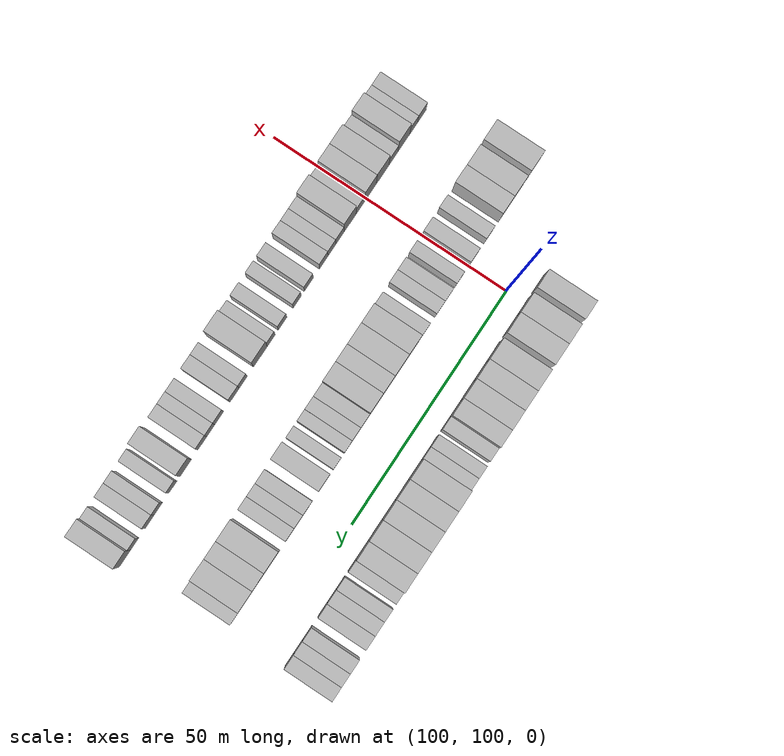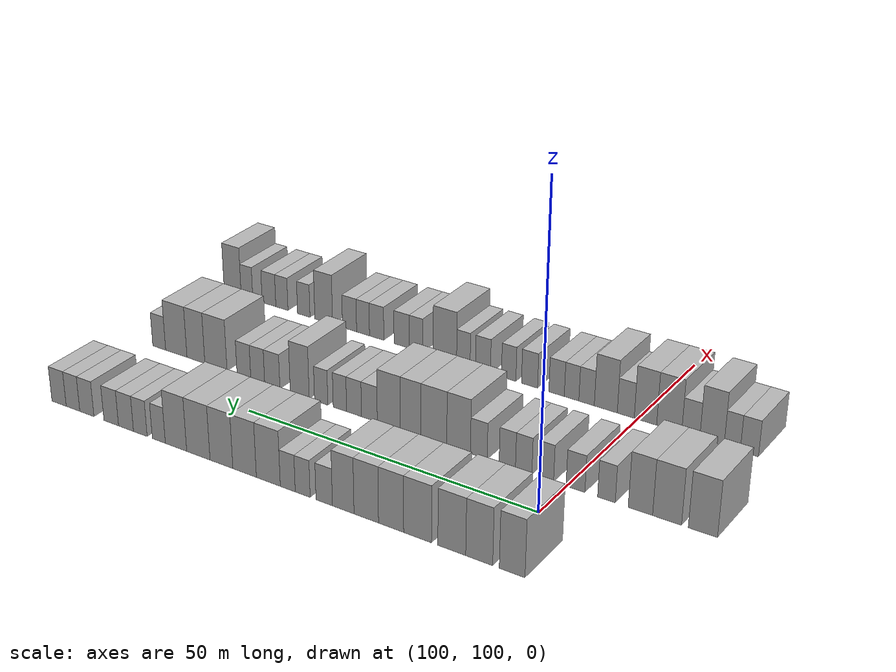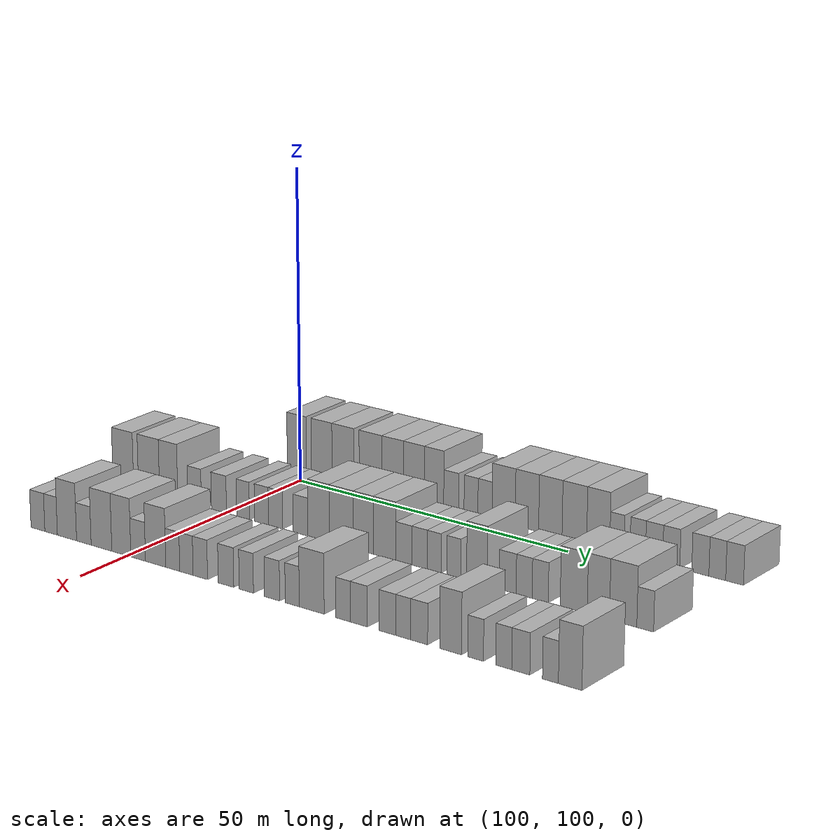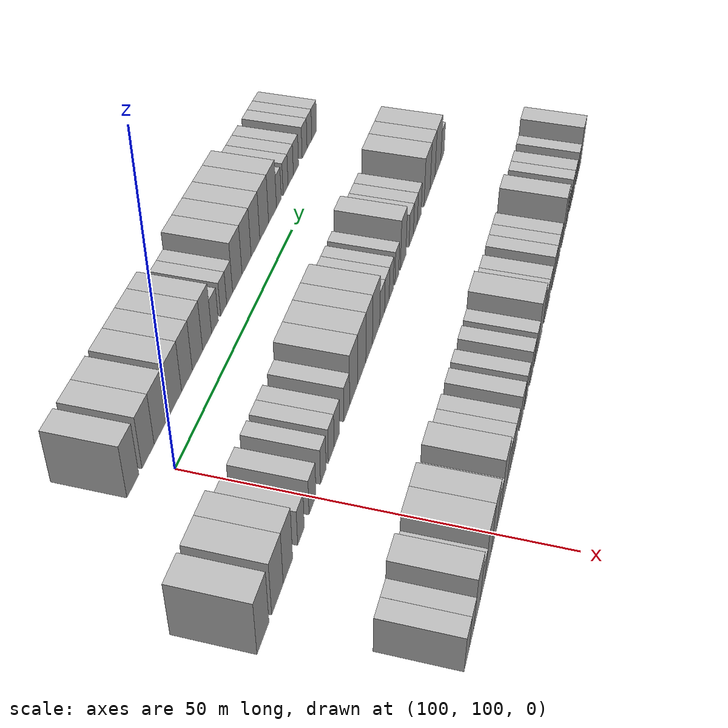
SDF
<sdf version="1.6">
 <world name="default">
  <model name="building_684">
   <static>1</static>
   <pose>91.0000 96.0054 0 0.000000 0.000000 0.000000</pose>
   <link name="link">
    <pose>0 0 4.50 0 0 0</pose>
    <collision name="collision"><geometry><box><size>10.0000 3.8603 9.0000</size></box></geometry></collision>
    <visual name="visual">
     <cast_shadows>0</cast_shadows>
     <geometry><box><size>10.0000 3.8603 9.0000</size></box></geometry>
     <material>
      <script>
       <uri>model://HANNAS_wall/materials/scripts</uri>
       <uri>model://HANNAS_wall/materials/textures</uri>
       <name>vrc/HANNAS_wall</name>
      </script>
     </material>
    </visual>
   </link>
  </model>
  <model name="building_685">
   <static>1</static>
   <pose>91.0000 101.0045 0 0.000000 0.000000 0.000000</pose>
   <link name="link">
    <pose>0 0 4.50 0 0 0</pose>
    <collision name="collision"><geometry><box><size>10.0000 4.1379 9.0000</size></box></geometry></collision>
    <visual name="visual">
     <cast_shadows>0</cast_shadows>
     <geometry><box><size>10.0000 4.1379 9.0000</size></box></geometry>
     <material>
      <script>
       <uri>model://HANNAS_wall/materials/scripts</uri>
       <uri>model://HANNAS_wall/materials/textures</uri>
       <name>vrc/HANNAS_wall</name>
      </script>
     </material>
    </visual>
   </link>
  </model>
  <model name="building_686">
   <static>1</static>
   <pose>91.0000 105.2503 0 0.000000 0.000000 0.000000</pose>
   <link name="link">
    <pose>0 0 4.50 0 0 0</pose>
    <collision name="collision"><geometry><box><size>10.0000 4.3535 9.0000</size></box></geometry></collision>
    <visual name="visual">
     <cast_shadows>0</cast_shadows>
     <geometry><box><size>10.0000 4.3535 9.0000</size></box></geometry>
     <material>
      <script>
       <uri>model://HANNAS_wall/materials/scripts</uri>
       <uri>model://HANNAS_wall/materials/textures</uri>
       <name>vrc/HANNAS_wall</name>
      </script>
     </material>
    </visual>
   </link>
  </model>
  <model name="building_687">
   <static>1</static>
   <pose>91.0000 110.6470 0 0.000000 0.000000 0.000000</pose>
   <link name="link">
    <pose>0 0 4.50 0 0 0</pose>
    <collision name="collision"><geometry><box><size>10.0000 4.4399 9.0000</size></box></geometry></collision>
    <visual name="visual">
     <cast_shadows>0</cast_shadows>
     <geometry><box><size>10.0000 4.4399 9.0000</size></box></geometry>
     <material>
      <script>
       <uri>model://HANNAS_wall/materials/scripts</uri>
       <uri>model://HANNAS_wall/materials/textures</uri>
       <name>vrc/HANNAS_wall</name>
      </script>
     </material>
    </visual>
   </link>
  </model>
  <model name="building_688">
   <static>1</static>
   <pose>91.0000 114.9137 0 0.000000 0.000000 0.000000</pose>
   <link name="link">
    <pose>0 0 4.50 0 0 0</pose>
    <collision name="collision"><geometry><box><size>10.0000 4.0936 9.0000</size></box></geometry></collision>
    <visual name="visual">
     <cast_shadows>0</cast_shadows>
     <geometry><box><size>10.0000 4.0936 9.0000</size></box></geometry>
     <material>
      <script>
       <uri>model://HANNAS_wall/materials/scripts</uri>
       <uri>model://HANNAS_wall/materials/textures</uri>
       <name>vrc/HANNAS_wall</name>
      </script>
     </material>
    </visual>
   </link>
  </model>
  <model name="building_689">
   <static>1</static>
   <pose>91.0000 118.9857 0 0.000000 0.000000 0.000000</pose>
   <link name="link">
    <pose>0 0 4.50 0 0 0</pose>
    <collision name="collision"><geometry><box><size>10.0000 4.0505 9.0000</size></box></geometry></collision>
    <visual name="visual">
     <cast_shadows>0</cast_shadows>
     <geometry><box><size>10.0000 4.0505 9.0000</size></box></geometry>
     <material>
      <script>
       <uri>model://HANNAS_wall/materials/scripts</uri>
       <uri>model://HANNAS_wall/materials/textures</uri>
       <name>vrc/HANNAS_wall</name>
      </script>
     </material>
    </visual>
   </link>
  </model>
  <model name="building_690">
   <static>1</static>
   <pose>91.0000 122.8248 0 0.000000 0.000000 0.000000</pose>
   <link name="link">
    <pose>0 0 4.50 0 0 0</pose>
    <collision name="collision"><geometry><box><size>10.0000 3.6277 9.0000</size></box></geometry></collision>
    <visual name="visual">
     <cast_shadows>0</cast_shadows>
     <geometry><box><size>10.0000 3.6277 9.0000</size></box></geometry>
     <material>
      <script>
       <uri>model://HANNAS_wall/materials/scripts</uri>
       <uri>model://HANNAS_wall/materials/textures</uri>
       <name>vrc/HANNAS_wall</name>
      </script>
     </material>
    </visual>
   </link>
  </model>
  <model name="building_691">
   <static>1</static>
   <pose>91.0000 126.0372 0 0.000000 0.000000 0.000000</pose>
   <link name="link">
    <pose>0 0 3.00 0 0 0</pose>
    <collision name="collision"><geometry><box><size>10.0000 2.7971 6.0000</size></box></geometry></collision>
    <visual name="visual">
     <cast_shadows>0</cast_shadows>
     <geometry><box><size>10.0000 2.7971 6.0000</size></box></geometry>
     <material>
      <script>
       <uri>model://HANNAS_wall/materials/scripts</uri>
       <uri>model://HANNAS_wall/materials/textures</uri>
       <name>vrc/HANNAS_wall</name>
      </script>
     </material>
    </visual>
   </link>
  </model>
  <model name="building_692">
   <static>1</static>
   <pose>91.0000 129.7230 0 0.000000 0.000000 0.000000</pose>
   <link name="link">
    <pose>0 0 3.00 0 0 0</pose>
    <collision name="collision"><geometry><box><size>10.0000 2.5743 6.0000</size></box></geometry></collision>
    <visual name="visual">
     <cast_shadows>0</cast_shadows>
     <geometry><box><size>10.0000 2.5743 6.0000</size></box></geometry>
     <material>
      <script>
       <uri>model://HANNAS_wall/materials/scripts</uri>
       <uri>model://HANNAS_wall/materials/textures</uri>
       <name>vrc/HANNAS_wall</name>
      </script>
     </material>
    </visual>
   </link>
  </model>
  <model name="building_693">
   <static>1</static>
   <pose>91.0000 132.3132 0 0.000000 0.000000 0.000000</pose>
   <link name="link">
    <pose>0 0 3.00 0 0 0</pose>
    <collision name="collision"><geometry><box><size>10.0000 2.6062 6.0000</size></box></geometry></collision>
    <visual name="visual">
     <cast_shadows>0</cast_shadows>
     <geometry><box><size>10.0000 2.6062 6.0000</size></box></geometry>
     <material>
      <script>
       <uri>model://HANNAS_wall/materials/scripts</uri>
       <uri>model://HANNAS_wall/materials/textures</uri>
       <name>vrc/HANNAS_wall</name>
      </script>
     </material>
    </visual>
   </link>
  </model>
  <model name="building_694">
   <static>1</static>
   <pose>91.0000 135.7335 0 0.000000 0.000000 0.000000</pose>
   <link name="link">
    <pose>0 0 4.50 0 0 0</pose>
    <collision name="collision"><geometry><box><size>10.0000 4.2344 9.0000</size></box></geometry></collision>
    <visual name="visual">
     <cast_shadows>0</cast_shadows>
     <geometry><box><size>10.0000 4.2344 9.0000</size></box></geometry>
     <material>
      <script>
       <uri>model://HANNAS_wall/materials/scripts</uri>
       <uri>model://HANNAS_wall/materials/textures</uri>
       <name>vrc/HANNAS_wall</name>
      </script>
     </material>
    </visual>
   </link>
  </model>
  <model name="building_695">
   <static>1</static>
   <pose>91.0000 139.9649 0 0.000000 0.000000 0.000000</pose>
   <link name="link">
    <pose>0 0 4.50 0 0 0</pose>
    <collision name="collision"><geometry><box><size>10.0000 4.2285 9.0000</size></box></geometry></collision>
    <visual name="visual">
     <cast_shadows>0</cast_shadows>
     <geometry><box><size>10.0000 4.2285 9.0000</size></box></geometry>
     <material>
      <script>
       <uri>model://HANNAS_wall/materials/scripts</uri>
       <uri>model://HANNAS_wall/materials/textures</uri>
       <name>vrc/HANNAS_wall</name>
      </script>
     </material>
    </visual>
   </link>
  </model>
  <model name="building_696">
   <static>1</static>
   <pose>91.0000 144.1677 0 0.000000 0.000000 0.000000</pose>
   <link name="link">
    <pose>0 0 4.50 0 0 0</pose>
    <collision name="collision"><geometry><box><size>10.0000 4.1770 9.0000</size></box></geometry></collision>
    <visual name="visual">
     <cast_shadows>0</cast_shadows>
     <geometry><box><size>10.0000 4.1770 9.0000</size></box></geometry>
     <material>
      <script>
       <uri>model://HANNAS_wall/materials/scripts</uri>
       <uri>model://HANNAS_wall/materials/textures</uri>
       <name>vrc/HANNAS_wall</name>
      </script>
     </material>
    </visual>
   </link>
  </model>
  <model name="building_697">
   <static>1</static>
   <pose>91.0000 148.4281 0 0.000000 0.000000 0.000000</pose>
   <link name="link">
    <pose>0 0 4.50 0 0 0</pose>
    <collision name="collision"><geometry><box><size>10.0000 4.3438 9.0000</size></box></geometry></collision>
    <visual name="visual">
     <cast_shadows>0</cast_shadows>
     <geometry><box><size>10.0000 4.3438 9.0000</size></box></geometry>
     <material>
      <script>
       <uri>model://HANNAS_wall/materials/scripts</uri>
       <uri>model://HANNAS_wall/materials/textures</uri>
       <name>vrc/HANNAS_wall</name>
      </script>
     </material>
    </visual>
   </link>
  </model>
  <model name="building_698">
   <static>1</static>
   <pose>91.0000 152.6174 0 0.000000 0.000000 0.000000</pose>
   <link name="link">
    <pose>0 0 4.50 0 0 0</pose>
    <collision name="collision"><geometry><box><size>10.0000 4.0349 9.0000</size></box></geometry></collision>
    <visual name="visual">
     <cast_shadows>0</cast_shadows>
     <geometry><box><size>10.0000 4.0349 9.0000</size></box></geometry>
     <material>
      <script>
       <uri>model://HANNAS_wall/materials/scripts</uri>
       <uri>model://HANNAS_wall/materials/textures</uri>
       <name>vrc/HANNAS_wall</name>
      </script>
     </material>
    </visual>
   </link>
  </model>
  <model name="building_699">
   <static>1</static>
   <pose>91.0000 155.8792 0 0.000000 0.000000 0.000000</pose>
   <link name="link">
    <pose>0 0 3.00 0 0 0</pose>
    <collision name="collision"><geometry><box><size>10.0000 2.4885 6.0000</size></box></geometry></collision>
    <visual name="visual">
     <cast_shadows>0</cast_shadows>
     <geometry><box><size>10.0000 2.4885 6.0000</size></box></geometry>
     <material>
      <script>
       <uri>model://HANNAS_wall/materials/scripts</uri>
       <uri>model://HANNAS_wall/materials/textures</uri>
       <name>vrc/HANNAS_wall</name>
      </script>
     </material>
    </visual>
   </link>
  </model>
  <model name="building_700">
   <static>1</static>
   <pose>91.0000 159.4492 0 0.000000 0.000000 0.000000</pose>
   <link name="link">
    <pose>0 0 3.00 0 0 0</pose>
    <collision name="collision"><geometry><box><size>10.0000 2.6516 6.0000</size></box></geometry></collision>
    <visual name="visual">
     <cast_shadows>0</cast_shadows>
     <geometry><box><size>10.0000 2.6516 6.0000</size></box></geometry>
     <material>
      <script>
       <uri>model://HANNAS_wall/materials/scripts</uri>
       <uri>model://HANNAS_wall/materials/textures</uri>
       <name>vrc/HANNAS_wall</name>
      </script>
     </material>
    </visual>
   </link>
  </model>
  <model name="building_701">
   <static>1</static>
   <pose>91.0000 162.2405 0 0.000000 0.000000 0.000000</pose>
   <link name="link">
    <pose>0 0 3.00 0 0 0</pose>
    <collision name="collision"><geometry><box><size>10.0000 2.9310 6.0000</size></box></geometry></collision>
    <visual name="visual">
     <cast_shadows>0</cast_shadows>
     <geometry><box><size>10.0000 2.9310 6.0000</size></box></geometry>
     <material>
      <script>
       <uri>model://HANNAS_wall/materials/scripts</uri>
       <uri>model://HANNAS_wall/materials/textures</uri>
       <name>vrc/HANNAS_wall</name>
      </script>
     </material>
    </visual>
   </link>
  </model>
  <model name="building_702">
   <static>1</static>
   <pose>91.0000 165.1512 0 0.000000 0.000000 0.000000</pose>
   <link name="link">
    <pose>0 0 3.00 0 0 0</pose>
    <collision name="collision"><geometry><box><size>10.0000 2.8904 6.0000</size></box></geometry></collision>
    <visual name="visual">
     <cast_shadows>0</cast_shadows>
     <geometry><box><size>10.0000 2.8904 6.0000</size></box></geometry>
     <material>
      <script>
       <uri>model://HANNAS_wall/materials/scripts</uri>
       <uri>model://HANNAS_wall/materials/textures</uri>
       <name>vrc/HANNAS_wall</name>
      </script>
     </material>
    </visual>
   </link>
  </model>
  <model name="building_703">
   <static>1</static>
   <pose>91.0000 170.0246 0 0.000000 0.000000 0.000000</pose>
   <link name="link">
    <pose>0 0 3.00 0 0 0</pose>
    <collision name="collision"><geometry><box><size>10.0000 2.8566 6.0000</size></box></geometry></collision>
    <visual name="visual">
     <cast_shadows>0</cast_shadows>
     <geometry><box><size>10.0000 2.8566 6.0000</size></box></geometry>
     <material>
      <script>
       <uri>model://HANNAS_wall/materials/scripts</uri>
       <uri>model://HANNAS_wall/materials/textures</uri>
       <name>vrc/HANNAS_wall</name>
      </script>
     </material>
    </visual>
   </link>
  </model>
  <model name="building_704">
   <static>1</static>
   <pose>91.0000 172.8418 0 0.000000 0.000000 0.000000</pose>
   <link name="link">
    <pose>0 0 3.00 0 0 0</pose>
    <collision name="collision"><geometry><box><size>10.0000 2.7778 6.0000</size></box></geometry></collision>
    <visual name="visual">
     <cast_shadows>0</cast_shadows>
     <geometry><box><size>10.0000 2.7778 6.0000</size></box></geometry>
     <material>
      <script>
       <uri>model://HANNAS_wall/materials/scripts</uri>
       <uri>model://HANNAS_wall/materials/textures</uri>
       <name>vrc/HANNAS_wall</name>
      </script>
     </material>
    </visual>
   </link>
  </model>
  <model name="building_705">
   <static>1</static>
   <pose>91.0000 175.6924 0 0.000000 0.000000 0.000000</pose>
   <link name="link">
    <pose>0 0 3.00 0 0 0</pose>
    <collision name="collision"><geometry><box><size>10.0000 2.9233 6.0000</size></box></geometry></collision>
    <visual name="visual">
     <cast_shadows>0</cast_shadows>
     <geometry><box><size>10.0000 2.9233 6.0000</size></box></geometry>
     <material>
      <script>
       <uri>model://HANNAS_wall/materials/scripts</uri>
       <uri>model://HANNAS_wall/materials/textures</uri>
       <name>vrc/HANNAS_wall</name>
      </script>
     </material>
    </visual>
   </link>
  </model>
  <model name="building_854">
   <static>1</static>
   <pose>113.0000 79.2271 0 0.000000 0.000000 0.000000</pose>
   <link name="link">
    <pose>0 0 4.50 0 0 0</pose>
    <collision name="collision"><geometry><box><size>10.0000 4.2856 9.0000</size></box></geometry></collision>
    <visual name="visual">
     <cast_shadows>0</cast_shadows>
     <geometry><box><size>10.0000 4.2856 9.0000</size></box></geometry>
     <material>
      <script>
       <uri>model://HANNAS_wall/materials/scripts</uri>
       <uri>model://HANNAS_wall/materials/textures</uri>
       <name>vrc/HANNAS_wall</name>
      </script>
     </material>
    </visual>
   </link>
  </model>
  <model name="building_855">
   <static>1</static>
   <pose>113.0000 84.5367 0 0.000000 0.000000 0.000000</pose>
   <link name="link">
    <pose>0 0 4.50 0 0 0</pose>
    <collision name="collision"><geometry><box><size>10.0000 4.3335 9.0000</size></box></geometry></collision>
    <visual name="visual">
     <cast_shadows>0</cast_shadows>
     <geometry><box><size>10.0000 4.3335 9.0000</size></box></geometry>
     <material>
      <script>
       <uri>model://HANNAS_wall/materials/scripts</uri>
       <uri>model://HANNAS_wall/materials/textures</uri>
       <name>vrc/HANNAS_wall</name>
      </script>
     </material>
    </visual>
   </link>
  </model>
  <model name="building_856">
   <static>1</static>
   <pose>113.0000 88.5578 0 0.000000 0.000000 0.000000</pose>
   <link name="link">
    <pose>0 0 4.50 0 0 0</pose>
    <collision name="collision"><geometry><box><size>10.0000 3.7089 9.0000</size></box></geometry></collision>
    <visual name="visual">
     <cast_shadows>0</cast_shadows>
     <geometry><box><size>10.0000 3.7089 9.0000</size></box></geometry>
     <material>
      <script>
       <uri>model://HANNAS_wall/materials/scripts</uri>
       <uri>model://HANNAS_wall/materials/textures</uri>
       <name>vrc/HANNAS_wall</name>
      </script>
     </material>
    </visual>
   </link>
  </model>
  <model name="building_857">
   <static>1</static>
   <pose>113.0000 93.7814 0 0.000000 0.000000 0.000000</pose>
   <link name="link">
    <pose>0 0 3.00 0 0 0</pose>
    <collision name="collision"><geometry><box><size>10.0000 2.7381 6.0000</size></box></geometry></collision>
    <visual name="visual">
     <cast_shadows>0</cast_shadows>
     <geometry><box><size>10.0000 2.7381 6.0000</size></box></geometry>
     <material>
      <script>
       <uri>model://HANNAS_wall/materials/scripts</uri>
       <uri>model://HANNAS_wall/materials/textures</uri>
       <name>vrc/HANNAS_wall</name>
      </script>
     </material>
    </visual>
   </link>
  </model>
  <model name="building_858">
   <static>1</static>
   <pose>113.0000 98.6433 0 0.000000 0.000000 0.000000</pose>
   <link name="link">
    <pose>0 0 3.00 0 0 0</pose>
    <collision name="collision"><geometry><box><size>10.0000 2.9858 6.0000</size></box></geometry></collision>
    <visual name="visual">
     <cast_shadows>0</cast_shadows>
     <geometry><box><size>10.0000 2.9858 6.0000</size></box></geometry>
     <material>
      <script>
       <uri>model://HANNAS_wall/materials/scripts</uri>
       <uri>model://HANNAS_wall/materials/textures</uri>
       <name>vrc/HANNAS_wall</name>
      </script>
     </material>
    </visual>
   </link>
  </model>
  <model name="building_859">
   <static>1</static>
   <pose>113.0000 103.3951 0 0.000000 0.000000 0.000000</pose>
   <link name="link">
    <pose>0 0 3.00 0 0 0</pose>
    <collision name="collision"><geometry><box><size>10.0000 2.5177 6.0000</size></box></geometry></collision>
    <visual name="visual">
     <cast_shadows>0</cast_shadows>
     <geometry><box><size>10.0000 2.5177 6.0000</size></box></geometry>
     <material>
      <script>
       <uri>model://HANNAS_wall/materials/scripts</uri>
       <uri>model://HANNAS_wall/materials/textures</uri>
       <name>vrc/HANNAS_wall</name>
      </script>
     </material>
    </visual>
   </link>
  </model>
  <model name="building_860">
   <static>1</static>
   <pose>113.0000 107.0019 0 0.000000 0.000000 0.000000</pose>
   <link name="link">
    <pose>0 0 3.00 0 0 0</pose>
    <collision name="collision"><geometry><box><size>10.0000 2.6960 6.0000</size></box></geometry></collision>
    <visual name="visual">
     <cast_shadows>0</cast_shadows>
     <geometry><box><size>10.0000 2.6960 6.0000</size></box></geometry>
     <material>
      <script>
       <uri>model://HANNAS_wall/materials/scripts</uri>
       <uri>model://HANNAS_wall/materials/textures</uri>
       <name>vrc/HANNAS_wall</name>
      </script>
     </material>
    </visual>
   </link>
  </model>
  <model name="building_861">
   <static>1</static>
   <pose>113.0000 109.6989 0 0.000000 0.000000 0.000000</pose>
   <link name="link">
    <pose>0 0 3.00 0 0 0</pose>
    <collision name="collision"><geometry><box><size>10.0000 2.6980 6.0000</size></box></geometry></collision>
    <visual name="visual">
     <cast_shadows>0</cast_shadows>
     <geometry><box><size>10.0000 2.6980 6.0000</size></box></geometry>
     <material>
      <script>
       <uri>model://HANNAS_wall/materials/scripts</uri>
       <uri>model://HANNAS_wall/materials/textures</uri>
       <name>vrc/HANNAS_wall</name>
      </script>
     </material>
    </visual>
   </link>
  </model>
  <model name="building_862">
   <static>1</static>
   <pose>113.0000 114.4643 0 0.000000 0.000000 0.000000</pose>
   <link name="link">
    <pose>0 0 3.00 0 0 0</pose>
    <collision name="collision"><geometry><box><size>10.0000 2.8329 6.0000</size></box></geometry></collision>
    <visual name="visual">
     <cast_shadows>0</cast_shadows>
     <geometry><box><size>10.0000 2.8329 6.0000</size></box></geometry>
     <material>
      <script>
       <uri>model://HANNAS_wall/materials/scripts</uri>
       <uri>model://HANNAS_wall/materials/textures</uri>
       <name>vrc/HANNAS_wall</name>
      </script>
     </material>
    </visual>
   </link>
  </model>
  <model name="building_863">
   <static>1</static>
   <pose>113.0000 117.9047 0 0.000000 0.000000 0.000000</pose>
   <link name="link">
    <pose>0 0 4.50 0 0 0</pose>
    <collision name="collision"><geometry><box><size>10.0000 4.0480 9.0000</size></box></geometry></collision>
    <visual name="visual">
     <cast_shadows>0</cast_shadows>
     <geometry><box><size>10.0000 4.0480 9.0000</size></box></geometry>
     <material>
      <script>
       <uri>model://HANNAS_wall/materials/scripts</uri>
       <uri>model://HANNAS_wall/materials/textures</uri>
       <name>vrc/HANNAS_wall</name>
      </script>
     </material>
    </visual>
   </link>
  </model>
  <model name="building_864">
   <static>1</static>
   <pose>113.0000 122.1634 0 0.000000 0.000000 0.000000</pose>
   <link name="link">
    <pose>0 0 4.50 0 0 0</pose>
    <collision name="collision"><geometry><box><size>10.0000 4.4696 9.0000</size></box></geometry></collision>
    <visual name="visual">
     <cast_shadows>0</cast_shadows>
     <geometry><box><size>10.0000 4.4696 9.0000</size></box></geometry>
     <material>
      <script>
       <uri>model://HANNAS_wall/materials/scripts</uri>
       <uri>model://HANNAS_wall/materials/textures</uri>
       <name>vrc/HANNAS_wall</name>
      </script>
     </material>
    </visual>
   </link>
  </model>
  <model name="building_865">
   <static>1</static>
   <pose>113.0000 126.2184 0 0.000000 0.000000 0.000000</pose>
   <link name="link">
    <pose>0 0 4.50 0 0 0</pose>
    <collision name="collision"><geometry><box><size>10.0000 3.6403 9.0000</size></box></geometry></collision>
    <visual name="visual">
     <cast_shadows>0</cast_shadows>
     <geometry><box><size>10.0000 3.6403 9.0000</size></box></geometry>
     <material>
      <script>
       <uri>model://HANNAS_wall/materials/scripts</uri>
       <uri>model://HANNAS_wall/materials/textures</uri>
       <name>vrc/HANNAS_wall</name>
      </script>
     </material>
    </visual>
   </link>
  </model>
  <model name="building_866">
   <static>1</static>
   <pose>113.0000 130.1092 0 0.000000 0.000000 0.000000</pose>
   <link name="link">
    <pose>0 0 4.50 0 0 0</pose>
    <collision name="collision"><geometry><box><size>10.0000 4.1415 9.0000</size></box></geometry></collision>
    <visual name="visual">
     <cast_shadows>0</cast_shadows>
     <geometry><box><size>10.0000 4.1415 9.0000</size></box></geometry>
     <material>
      <script>
       <uri>model://HANNAS_wall/materials/scripts</uri>
       <uri>model://HANNAS_wall/materials/textures</uri>
       <name>vrc/HANNAS_wall</name>
      </script>
     </material>
    </visual>
   </link>
  </model>
  <model name="building_867">
   <static>1</static>
   <pose>113.0000 133.6156 0 0.000000 0.000000 0.000000</pose>
   <link name="link">
    <pose>0 0 3.00 0 0 0</pose>
    <collision name="collision"><geometry><box><size>10.0000 2.8713 6.0000</size></box></geometry></collision>
    <visual name="visual">
     <cast_shadows>0</cast_shadows>
     <geometry><box><size>10.0000 2.8713 6.0000</size></box></geometry>
     <material>
      <script>
       <uri>model://HANNAS_wall/materials/scripts</uri>
       <uri>model://HANNAS_wall/materials/textures</uri>
       <name>vrc/HANNAS_wall</name>
      </script>
     </material>
    </visual>
   </link>
  </model>
  <model name="building_868">
   <static>1</static>
   <pose>113.0000 136.4163 0 0.000000 0.000000 0.000000</pose>
   <link name="link">
    <pose>0 0 3.00 0 0 0</pose>
    <collision name="collision"><geometry><box><size>10.0000 2.7302 6.0000</size></box></geometry></collision>
    <visual name="visual">
     <cast_shadows>0</cast_shadows>
     <geometry><box><size>10.0000 2.7302 6.0000</size></box></geometry>
     <material>
      <script>
       <uri>model://HANNAS_wall/materials/scripts</uri>
       <uri>model://HANNAS_wall/materials/textures</uri>
       <name>vrc/HANNAS_wall</name>
      </script>
     </material>
    </visual>
   </link>
  </model>
  <model name="building_869">
   <static>1</static>
   <pose>113.0000 139.0191 0 0.000000 0.000000 0.000000</pose>
   <link name="link">
    <pose>0 0 3.00 0 0 0</pose>
    <collision name="collision"><geometry><box><size>10.0000 2.4753 6.0000</size></box></geometry></collision>
    <visual name="visual">
     <cast_shadows>0</cast_shadows>
     <geometry><box><size>10.0000 2.4753 6.0000</size></box></geometry>
     <material>
      <script>
       <uri>model://HANNAS_wall/materials/scripts</uri>
       <uri>model://HANNAS_wall/materials/textures</uri>
       <name>vrc/HANNAS_wall</name>
      </script>
     </material>
    </visual>
   </link>
  </model>
  <model name="building_870">
   <static>1</static>
   <pose>113.0000 142.5044 0 0.000000 0.000000 0.000000</pose>
   <link name="link">
    <pose>0 0 3.00 0 0 0</pose>
    <collision name="collision"><geometry><box><size>10.0000 2.4953 6.0000</size></box></geometry></collision>
    <visual name="visual">
     <cast_shadows>0</cast_shadows>
     <geometry><box><size>10.0000 2.4953 6.0000</size></box></geometry>
     <material>
      <script>
       <uri>model://HANNAS_wall/materials/scripts</uri>
       <uri>model://HANNAS_wall/materials/textures</uri>
       <name>vrc/HANNAS_wall</name>
      </script>
     </material>
    </visual>
   </link>
  </model>
  <model name="building_871">
   <static>1</static>
   <pose>113.0000 146.5556 0 0.000000 0.000000 0.000000</pose>
   <link name="link">
    <pose>0 0 4.50 0 0 0</pose>
    <collision name="collision"><geometry><box><size>10.0000 3.6070 9.0000</size></box></geometry></collision>
    <visual name="visual">
     <cast_shadows>0</cast_shadows>
     <geometry><box><size>10.0000 3.6070 9.0000</size></box></geometry>
     <material>
      <script>
       <uri>model://HANNAS_wall/materials/scripts</uri>
       <uri>model://HANNAS_wall/materials/textures</uri>
       <name>vrc/HANNAS_wall</name>
      </script>
     </material>
    </visual>
   </link>
  </model>
  <model name="building_872">
   <static>1</static>
   <pose>113.0000 151.8375 0 0.000000 0.000000 0.000000</pose>
   <link name="link">
    <pose>0 0 3.00 0 0 0</pose>
    <collision name="collision"><geometry><box><size>10.0000 2.9568 6.0000</size></box></geometry></collision>
    <visual name="visual">
     <cast_shadows>0</cast_shadows>
     <geometry><box><size>10.0000 2.9568 6.0000</size></box></geometry>
     <material>
      <script>
       <uri>model://HANNAS_wall/materials/scripts</uri>
       <uri>model://HANNAS_wall/materials/textures</uri>
       <name>vrc/HANNAS_wall</name>
      </script>
     </material>
    </visual>
   </link>
  </model>
  <model name="building_873">
   <static>1</static>
   <pose>113.0000 154.6767 0 0.000000 0.000000 0.000000</pose>
   <link name="link">
    <pose>0 0 3.00 0 0 0</pose>
    <collision name="collision"><geometry><box><size>10.0000 2.7217 6.0000</size></box></geometry></collision>
    <visual name="visual">
     <cast_shadows>0</cast_shadows>
     <geometry><box><size>10.0000 2.7217 6.0000</size></box></geometry>
     <material>
      <script>
       <uri>model://HANNAS_wall/materials/scripts</uri>
       <uri>model://HANNAS_wall/materials/textures</uri>
       <name>vrc/HANNAS_wall</name>
      </script>
     </material>
    </visual>
   </link>
  </model>
  <model name="building_874">
   <static>1</static>
   <pose>113.0000 157.3989 0 0.000000 0.000000 0.000000</pose>
   <link name="link">
    <pose>0 0 3.00 0 0 0</pose>
    <collision name="collision"><geometry><box><size>10.0000 2.7226 6.0000</size></box></geometry></collision>
    <visual name="visual">
     <cast_shadows>0</cast_shadows>
     <geometry><box><size>10.0000 2.7226 6.0000</size></box></geometry>
     <material>
      <script>
       <uri>model://HANNAS_wall/materials/scripts</uri>
       <uri>model://HANNAS_wall/materials/textures</uri>
       <name>vrc/HANNAS_wall</name>
      </script>
     </material>
    </visual>
   </link>
  </model>
  <model name="building_875">
   <static>1</static>
   <pose>113.0000 163.0029 0 0.000000 0.000000 0.000000</pose>
   <link name="link">
    <pose>0 0 4.50 0 0 0</pose>
    <collision name="collision"><geometry><box><size>10.0000 4.4855 9.0000</size></box></geometry></collision>
    <visual name="visual">
     <cast_shadows>0</cast_shadows>
     <geometry><box><size>10.0000 4.4855 9.0000</size></box></geometry>
     <material>
      <script>
       <uri>model://HANNAS_wall/materials/scripts</uri>
       <uri>model://HANNAS_wall/materials/textures</uri>
       <name>vrc/HANNAS_wall</name>
      </script>
     </material>
    </visual>
   </link>
  </model>
  <model name="building_876">
   <static>1</static>
   <pose>113.0000 167.0771 0 0.000000 0.000000 0.000000</pose>
   <link name="link">
    <pose>0 0 4.50 0 0 0</pose>
    <collision name="collision"><geometry><box><size>10.0000 3.6629 9.0000</size></box></geometry></collision>
    <visual name="visual">
     <cast_shadows>0</cast_shadows>
     <geometry><box><size>10.0000 3.6629 9.0000</size></box></geometry>
     <material>
      <script>
       <uri>model://HANNAS_wall/materials/scripts</uri>
       <uri>model://HANNAS_wall/materials/textures</uri>
       <name>vrc/HANNAS_wall</name>
      </script>
     </material>
    </visual>
   </link>
  </model>
  <model name="building_877">
   <static>1</static>
   <pose>113.0000 171.1262 0 0.000000 0.000000 0.000000</pose>
   <link name="link">
    <pose>0 0 4.50 0 0 0</pose>
    <collision name="collision"><geometry><box><size>10.0000 4.4353 9.0000</size></box></geometry></collision>
    <visual name="visual">
     <cast_shadows>0</cast_shadows>
     <geometry><box><size>10.0000 4.4353 9.0000</size></box></geometry>
     <material>
      <script>
       <uri>model://HANNAS_wall/materials/scripts</uri>
       <uri>model://HANNAS_wall/materials/textures</uri>
       <name>vrc/HANNAS_wall</name>
      </script>
     </material>
    </visual>
   </link>
  </model>
  <model name="building_878">
   <static>1</static>
   <pose>113.0000 174.6949 0 0.000000 0.000000 0.000000</pose>
   <link name="link">
    <pose>0 0 3.00 0 0 0</pose>
    <collision name="collision"><geometry><box><size>10.0000 2.7022 6.0000</size></box></geometry></collision>
    <visual name="visual">
     <cast_shadows>0</cast_shadows>
     <geometry><box><size>10.0000 2.7022 6.0000</size></box></geometry>
     <material>
      <script>
       <uri>model://HANNAS_wall/materials/scripts</uri>
       <uri>model://HANNAS_wall/materials/textures</uri>
       <name>vrc/HANNAS_wall</name>
      </script>
     </material>
    </visual>
   </link>
  </model>
  <model name="building_1043">
   <static>1</static>
   <pose>135.0000 82.0904 0 0.000000 0.000000 0.000000</pose>
   <link name="link">
    <pose>0 0 3.00 0 0 0</pose>
    <collision name="collision"><geometry><box><size>10.0000 2.8292 6.0000</size></box></geometry></collision>
    <visual name="visual">
     <cast_shadows>0</cast_shadows>
     <geometry><box><size>10.0000 2.8292 6.0000</size></box></geometry>
     <material>
      <script>
       <uri>model://HANNAS_wall/materials/scripts</uri>
       <uri>model://HANNAS_wall/materials/textures</uri>
       <name>vrc/HANNAS_wall</name>
      </script>
     </material>
    </visual>
   </link>
  </model>
  <model name="building_1044">
   <static>1</static>
   <pose>135.0000 84.7758 0 0.000000 0.000000 0.000000</pose>
   <link name="link">
    <pose>0 0 3.00 0 0 0</pose>
    <collision name="collision"><geometry><box><size>10.0000 2.5415 6.0000</size></box></geometry></collision>
    <visual name="visual">
     <cast_shadows>0</cast_shadows>
     <geometry><box><size>10.0000 2.5415 6.0000</size></box></geometry>
     <material>
      <script>
       <uri>model://HANNAS_wall/materials/scripts</uri>
       <uri>model://HANNAS_wall/materials/textures</uri>
       <name>vrc/HANNAS_wall</name>
      </script>
     </material>
    </visual>
   </link>
  </model>
  <model name="building_1045">
   <static>1</static>
   <pose>135.0000 87.9763 0 0.000000 0.000000 0.000000</pose>
   <link name="link">
    <pose>0 0 4.50 0 0 0</pose>
    <collision name="collision"><geometry><box><size>10.0000 3.8595 9.0000</size></box></geometry></collision>
    <visual name="visual">
     <cast_shadows>0</cast_shadows>
     <geometry><box><size>10.0000 3.8595 9.0000</size></box></geometry>
     <material>
      <script>
       <uri>model://HANNAS_wall/materials/scripts</uri>
       <uri>model://HANNAS_wall/materials/textures</uri>
       <name>vrc/HANNAS_wall</name>
      </script>
     </material>
    </visual>
   </link>
  </model>
  <model name="building_1046">
   <static>1</static>
   <pose>135.0000 91.3594 0 0.000000 0.000000 0.000000</pose>
   <link name="link">
    <pose>0 0 3.00 0 0 0</pose>
    <collision name="collision"><geometry><box><size>10.0000 2.9068 6.0000</size></box></geometry></collision>
    <visual name="visual">
     <cast_shadows>0</cast_shadows>
     <geometry><box><size>10.0000 2.9068 6.0000</size></box></geometry>
     <material>
      <script>
       <uri>model://HANNAS_wall/materials/scripts</uri>
       <uri>model://HANNAS_wall/materials/textures</uri>
       <name>vrc/HANNAS_wall</name>
      </script>
     </material>
    </visual>
   </link>
  </model>
  <model name="building_1047">
   <static>1</static>
   <pose>135.0000 94.8569 0 0.000000 0.000000 0.000000</pose>
   <link name="link">
    <pose>0 0 4.50 0 0 0</pose>
    <collision name="collision"><geometry><box><size>10.0000 4.0881 9.0000</size></box></geometry></collision>
    <visual name="visual">
     <cast_shadows>0</cast_shadows>
     <geometry><box><size>10.0000 4.0881 9.0000</size></box></geometry>
     <material>
      <script>
       <uri>model://HANNAS_wall/materials/scripts</uri>
       <uri>model://HANNAS_wall/materials/textures</uri>
       <name>vrc/HANNAS_wall</name>
      </script>
     </material>
    </visual>
   </link>
  </model>
  <model name="building_1048">
   <static>1</static>
   <pose>135.0000 98.7574 0 0.000000 0.000000 0.000000</pose>
   <link name="link">
    <pose>0 0 4.50 0 0 0</pose>
    <collision name="collision"><geometry><box><size>10.0000 3.7129 9.0000</size></box></geometry></collision>
    <visual name="visual">
     <cast_shadows>0</cast_shadows>
     <geometry><box><size>10.0000 3.7129 9.0000</size></box></geometry>
     <material>
      <script>
       <uri>model://HANNAS_wall/materials/scripts</uri>
       <uri>model://HANNAS_wall/materials/textures</uri>
       <name>vrc/HANNAS_wall</name>
      </script>
     </material>
    </visual>
   </link>
  </model>
  <model name="building_1049">
   <static>1</static>
   <pose>135.0000 102.0347 0 0.000000 0.000000 0.000000</pose>
   <link name="link">
    <pose>0 0 3.00 0 0 0</pose>
    <collision name="collision"><geometry><box><size>10.0000 2.8417 6.0000</size></box></geometry></collision>
    <visual name="visual">
     <cast_shadows>0</cast_shadows>
     <geometry><box><size>10.0000 2.8417 6.0000</size></box></geometry>
     <material>
      <script>
       <uri>model://HANNAS_wall/materials/scripts</uri>
       <uri>model://HANNAS_wall/materials/textures</uri>
       <name>vrc/HANNAS_wall</name>
      </script>
     </material>
    </visual>
   </link>
  </model>
  <model name="building_1050">
   <static>1</static>
   <pose>135.0000 105.4058 0 0.000000 0.000000 0.000000</pose>
   <link name="link">
    <pose>0 0 4.50 0 0 0</pose>
    <collision name="collision"><geometry><box><size>10.0000 3.9005 9.0000</size></box></geometry></collision>
    <visual name="visual">
     <cast_shadows>0</cast_shadows>
     <geometry><box><size>10.0000 3.9005 9.0000</size></box></geometry>
     <material>
      <script>
       <uri>model://HANNAS_wall/materials/scripts</uri>
       <uri>model://HANNAS_wall/materials/textures</uri>
       <name>vrc/HANNAS_wall</name>
      </script>
     </material>
    </visual>
   </link>
  </model>
  <model name="building_1051">
   <static>1</static>
   <pose>135.0000 108.6858 0 0.000000 0.000000 0.000000</pose>
   <link name="link">
    <pose>0 0 3.00 0 0 0</pose>
    <collision name="collision"><geometry><box><size>10.0000 2.6595 6.0000</size></box></geometry></collision>
    <visual name="visual">
     <cast_shadows>0</cast_shadows>
     <geometry><box><size>10.0000 2.6595 6.0000</size></box></geometry>
     <material>
      <script>
       <uri>model://HANNAS_wall/materials/scripts</uri>
       <uri>model://HANNAS_wall/materials/textures</uri>
       <name>vrc/HANNAS_wall</name>
      </script>
     </material>
    </visual>
   </link>
  </model>
  <model name="building_1052">
   <static>1</static>
   <pose>135.0000 111.2762 0 0.000000 0.000000 0.000000</pose>
   <link name="link">
    <pose>0 0 3.00 0 0 0</pose>
    <collision name="collision"><geometry><box><size>10.0000 2.5212 6.0000</size></box></geometry></collision>
    <visual name="visual">
     <cast_shadows>0</cast_shadows>
     <geometry><box><size>10.0000 2.5212 6.0000</size></box></geometry>
     <material>
      <script>
       <uri>model://HANNAS_wall/materials/scripts</uri>
       <uri>model://HANNAS_wall/materials/textures</uri>
       <name>vrc/HANNAS_wall</name>
      </script>
     </material>
    </visual>
   </link>
  </model>
  <model name="building_1053">
   <static>1</static>
   <pose>135.0000 113.8893 0 0.000000 0.000000 0.000000</pose>
   <link name="link">
    <pose>0 0 3.00 0 0 0</pose>
    <collision name="collision"><geometry><box><size>10.0000 2.7050 6.0000</size></box></geometry></collision>
    <visual name="visual">
     <cast_shadows>0</cast_shadows>
     <geometry><box><size>10.0000 2.7050 6.0000</size></box></geometry>
     <material>
      <script>
       <uri>model://HANNAS_wall/materials/scripts</uri>
       <uri>model://HANNAS_wall/materials/textures</uri>
       <name>vrc/HANNAS_wall</name>
      </script>
     </material>
    </visual>
   </link>
  </model>
  <model name="building_1054">
   <static>1</static>
   <pose>135.0000 118.6748 0 0.000000 0.000000 0.000000</pose>
   <link name="link">
    <pose>0 0 3.00 0 0 0</pose>
    <collision name="collision"><geometry><box><size>10.0000 2.8661 6.0000</size></box></geometry></collision>
    <visual name="visual">
     <cast_shadows>0</cast_shadows>
     <geometry><box><size>10.0000 2.8661 6.0000</size></box></geometry>
     <material>
      <script>
       <uri>model://HANNAS_wall/materials/scripts</uri>
       <uri>model://HANNAS_wall/materials/textures</uri>
       <name>vrc/HANNAS_wall</name>
      </script>
     </material>
    </visual>
   </link>
  </model>
  <model name="building_1055">
   <static>1</static>
   <pose>135.0000 122.4145 0 0.000000 0.000000 0.000000</pose>
   <link name="link">
    <pose>0 0 3.00 0 0 0</pose>
    <collision name="collision"><geometry><box><size>10.0000 2.6134 6.0000</size></box></geometry></collision>
    <visual name="visual">
     <cast_shadows>0</cast_shadows>
     <geometry><box><size>10.0000 2.6134 6.0000</size></box></geometry>
     <material>
      <script>
       <uri>model://HANNAS_wall/materials/scripts</uri>
       <uri>model://HANNAS_wall/materials/textures</uri>
       <name>vrc/HANNAS_wall</name>
      </script>
     </material>
    </visual>
   </link>
  </model>
  <model name="building_1056">
   <static>1</static>
   <pose>135.0000 127.0924 0 0.000000 0.000000 0.000000</pose>
   <link name="link">
    <pose>0 0 3.00 0 0 0</pose>
    <collision name="collision"><geometry><box><size>10.0000 2.7423 6.0000</size></box></geometry></collision>
    <visual name="visual">
     <cast_shadows>0</cast_shadows>
     <geometry><box><size>10.0000 2.7423 6.0000</size></box></geometry>
     <material>
      <script>
       <uri>model://HANNAS_wall/materials/scripts</uri>
       <uri>model://HANNAS_wall/materials/textures</uri>
       <name>vrc/HANNAS_wall</name>
      </script>
     </material>
    </visual>
   </link>
  </model>
  <model name="building_1057">
   <static>1</static>
   <pose>135.0000 130.7202 0 0.000000 0.000000 0.000000</pose>
   <link name="link">
    <pose>0 0 3.00 0 0 0</pose>
    <collision name="collision"><geometry><box><size>10.0000 2.5133 6.0000</size></box></geometry></collision>
    <visual name="visual">
     <cast_shadows>0</cast_shadows>
     <geometry><box><size>10.0000 2.5133 6.0000</size></box></geometry>
     <material>
      <script>
       <uri>model://HANNAS_wall/materials/scripts</uri>
       <uri>model://HANNAS_wall/materials/textures</uri>
       <name>vrc/HANNAS_wall</name>
      </script>
     </material>
    </visual>
   </link>
  </model>
  <model name="building_1058">
   <static>1</static>
   <pose>135.0000 134.1827 0 0.000000 0.000000 0.000000</pose>
   <link name="link">
    <pose>0 0 4.50 0 0 0</pose>
    <collision name="collision"><geometry><box><size>10.0000 4.4117 9.0000</size></box></geometry></collision>
    <visual name="visual">
     <cast_shadows>0</cast_shadows>
     <geometry><box><size>10.0000 4.4117 9.0000</size></box></geometry>
     <material>
      <script>
       <uri>model://HANNAS_wall/materials/scripts</uri>
       <uri>model://HANNAS_wall/materials/textures</uri>
       <name>vrc/HANNAS_wall</name>
      </script>
     </material>
    </visual>
   </link>
  </model>
  <model name="building_1059">
   <static>1</static>
   <pose>135.0000 139.6708 0 0.000000 0.000000 0.000000</pose>
   <link name="link">
    <pose>0 0 3.00 0 0 0</pose>
    <collision name="collision"><geometry><box><size>10.0000 2.5645 6.0000</size></box></geometry></collision>
    <visual name="visual">
     <cast_shadows>0</cast_shadows>
     <geometry><box><size>10.0000 2.5645 6.0000</size></box></geometry>
     <material>
      <script>
       <uri>model://HANNAS_wall/materials/scripts</uri>
       <uri>model://HANNAS_wall/materials/textures</uri>
       <name>vrc/HANNAS_wall</name>
      </script>
     </material>
    </visual>
   </link>
  </model>
  <model name="building_1060">
   <static>1</static>
   <pose>135.0000 142.4318 0 0.000000 0.000000 0.000000</pose>
   <link name="link">
    <pose>0 0 3.00 0 0 0</pose>
    <collision name="collision"><geometry><box><size>10.0000 2.9575 6.0000</size></box></geometry></collision>
    <visual name="visual">
     <cast_shadows>0</cast_shadows>
     <geometry><box><size>10.0000 2.9575 6.0000</size></box></geometry>
     <material>
      <script>
       <uri>model://HANNAS_wall/materials/scripts</uri>
       <uri>model://HANNAS_wall/materials/textures</uri>
       <name>vrc/HANNAS_wall</name>
      </script>
     </material>
    </visual>
   </link>
  </model>
  <model name="building_1061">
   <static>1</static>
   <pose>135.0000 147.3235 0 0.000000 0.000000 0.000000</pose>
   <link name="link">
    <pose>0 0 3.00 0 0 0</pose>
    <collision name="collision"><geometry><box><size>10.0000 2.8258 6.0000</size></box></geometry></collision>
    <visual name="visual">
     <cast_shadows>0</cast_shadows>
     <geometry><box><size>10.0000 2.8258 6.0000</size></box></geometry>
     <material>
      <script>
       <uri>model://HANNAS_wall/materials/scripts</uri>
       <uri>model://HANNAS_wall/materials/textures</uri>
       <name>vrc/HANNAS_wall</name>
      </script>
     </material>
    </visual>
   </link>
  </model>
  <model name="building_1062">
   <static>1</static>
   <pose>135.0000 150.0175 0 0.000000 0.000000 0.000000</pose>
   <link name="link">
    <pose>0 0 3.00 0 0 0</pose>
    <collision name="collision"><geometry><box><size>10.0000 2.5622 6.0000</size></box></geometry></collision>
    <visual name="visual">
     <cast_shadows>0</cast_shadows>
     <geometry><box><size>10.0000 2.5622 6.0000</size></box></geometry>
     <material>
      <script>
       <uri>model://HANNAS_wall/materials/scripts</uri>
       <uri>model://HANNAS_wall/materials/textures</uri>
       <name>vrc/HANNAS_wall</name>
      </script>
     </material>
    </visual>
   </link>
  </model>
  <model name="building_1063">
   <static>1</static>
   <pose>135.0000 152.7151 0 0.000000 0.000000 0.000000</pose>
   <link name="link">
    <pose>0 0 3.00 0 0 0</pose>
    <collision name="collision"><geometry><box><size>10.0000 2.8330 6.0000</size></box></geometry></collision>
    <visual name="visual">
     <cast_shadows>0</cast_shadows>
     <geometry><box><size>10.0000 2.8330 6.0000</size></box></geometry>
     <material>
      <script>
       <uri>model://HANNAS_wall/materials/scripts</uri>
       <uri>model://HANNAS_wall/materials/textures</uri>
       <name>vrc/HANNAS_wall</name>
      </script>
     </material>
    </visual>
   </link>
  </model>
  <model name="building_1064">
   <static>1</static>
   <pose>135.0000 157.9451 0 0.000000 0.000000 0.000000</pose>
   <link name="link">
    <pose>0 0 4.50 0 0 0</pose>
    <collision name="collision"><geometry><box><size>10.0000 3.6270 9.0000</size></box></geometry></collision>
    <visual name="visual">
     <cast_shadows>0</cast_shadows>
     <geometry><box><size>10.0000 3.6270 9.0000</size></box></geometry>
     <material>
      <script>
       <uri>model://HANNAS_wall/materials/scripts</uri>
       <uri>model://HANNAS_wall/materials/textures</uri>
       <name>vrc/HANNAS_wall</name>
      </script>
     </material>
    </visual>
   </link>
  </model>
  <model name="building_1065">
   <static>1</static>
   <pose>135.0000 162.0464 0 0.000000 0.000000 0.000000</pose>
   <link name="link">
    <pose>0 0 3.00 0 0 0</pose>
    <collision name="collision"><geometry><box><size>10.0000 2.5756 6.0000</size></box></geometry></collision>
    <visual name="visual">
     <cast_shadows>0</cast_shadows>
     <geometry><box><size>10.0000 2.5756 6.0000</size></box></geometry>
     <material>
      <script>
       <uri>model://HANNAS_wall/materials/scripts</uri>
       <uri>model://HANNAS_wall/materials/textures</uri>
       <name>vrc/HANNAS_wall</name>
      </script>
     </material>
    </visual>
   </link>
  </model>
  <model name="building_1066">
   <static>1</static>
   <pose>135.0000 166.6146 0 0.000000 0.000000 0.000000</pose>
   <link name="link">
    <pose>0 0 3.00 0 0 0</pose>
    <collision name="collision"><geometry><box><size>10.0000 2.5609 6.0000</size></box></geometry></collision>
    <visual name="visual">
     <cast_shadows>0</cast_shadows>
     <geometry><box><size>10.0000 2.5609 6.0000</size></box></geometry>
     <material>
      <script>
       <uri>model://HANNAS_wall/materials/scripts</uri>
       <uri>model://HANNAS_wall/materials/textures</uri>
       <name>vrc/HANNAS_wall</name>
      </script>
     </material>
    </visual>
   </link>
  </model>
  <model name="building_1067">
   <static>1</static>
   <pose>135.0000 169.3461 0 0.000000 0.000000 0.000000</pose>
   <link name="link">
    <pose>0 0 3.00 0 0 0</pose>
    <collision name="collision"><geometry><box><size>10.0000 2.9021 6.0000</size></box></geometry></collision>
    <visual name="visual">
     <cast_shadows>0</cast_shadows>
     <geometry><box><size>10.0000 2.9021 6.0000</size></box></geometry>
     <material>
      <script>
       <uri>model://HANNAS_wall/materials/scripts</uri>
       <uri>model://HANNAS_wall/materials/textures</uri>
       <name>vrc/HANNAS_wall</name>
      </script>
     </material>
    </visual>
   </link>
  </model>
  <model name="building_1068">
   <static>1</static>
   <pose>135.0000 174.0516 0 0.000000 0.000000 0.000000</pose>
   <link name="link">
    <pose>0 0 3.00 0 0 0</pose>
    <collision name="collision"><geometry><box><size>10.0000 2.5090 6.0000</size></box></geometry></collision>
    <visual name="visual">
     <cast_shadows>0</cast_shadows>
     <geometry><box><size>10.0000 2.5090 6.0000</size></box></geometry>
     <material>
      <script>
       <uri>model://HANNAS_wall/materials/scripts</uri>
       <uri>model://HANNAS_wall/materials/textures</uri>
       <name>vrc/HANNAS_wall</name>
      </script>
     </material>
    </visual>
   </link>
  </model>
  <model name="building_1069">
   <static>1</static>
   <pose>135.0000 177.1450 0 0.000000 0.000000 0.000000</pose>
   <link name="link">
    <pose>0 0 4.50 0 0 0</pose>
    <collision name="collision"><geometry><box><size>10.0000 3.6779 9.0000</size></box></geometry></collision>
    <visual name="visual">
     <cast_shadows>0</cast_shadows>
     <geometry><box><size>10.0000 3.6779 9.0000</size></box></geometry>
     <material>
      <script>
       <uri>model://HANNAS_wall/materials/scripts</uri>
       <uri>model://HANNAS_wall/materials/textures</uri>
       <name>vrc/HANNAS_wall</name>
      </script>
     </material>
    </visual>
   </link>
  </model>
 </world>
</sdf>
